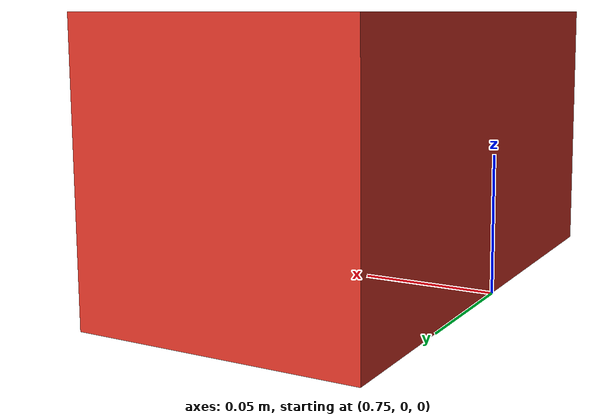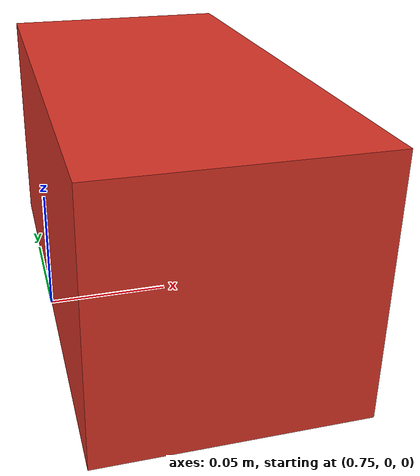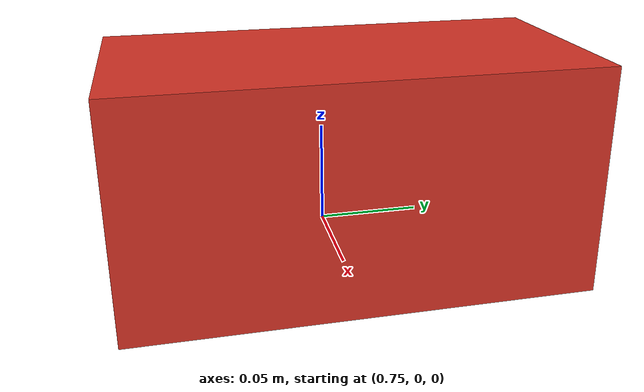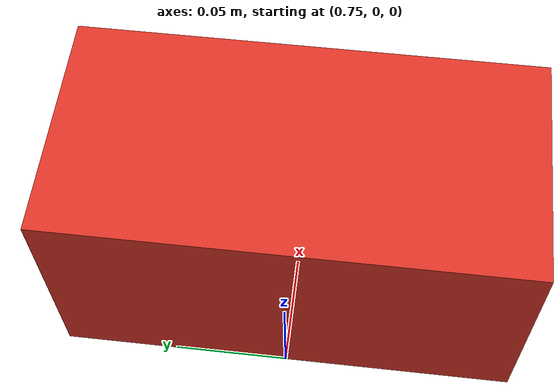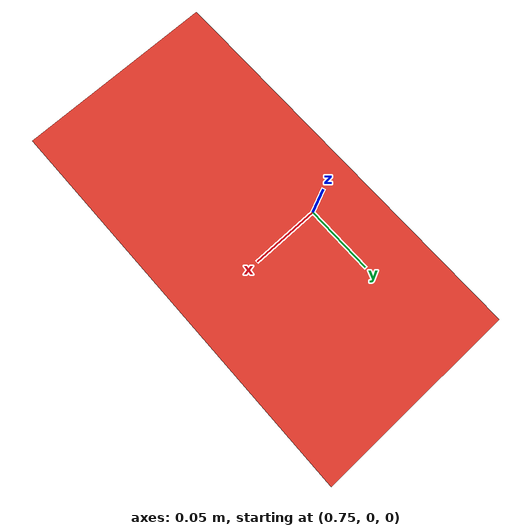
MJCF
<mujoco model="microduck_obstacle">
    <compiler angle="radian" autolimits="true"/>

    <worldbody>
        <body name="obstacle" pos="0.8 0 0.05">
            <freejoint name="obstacle_free"/>
            <geom type="box" name="obstacle_geom" size="0.05 0.10 0.05"
                  mass="2.0" rgba="0.85 0.20 0.15 1" friction="0.8 0.01 0.001"/>
        </body>
    </worldbody>
</mujoco>
